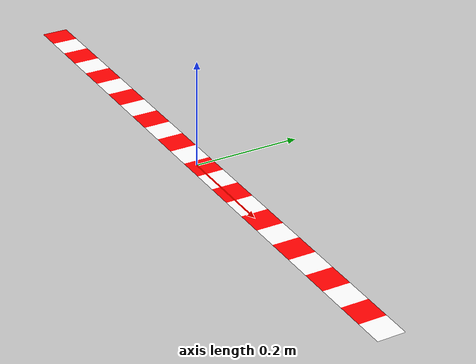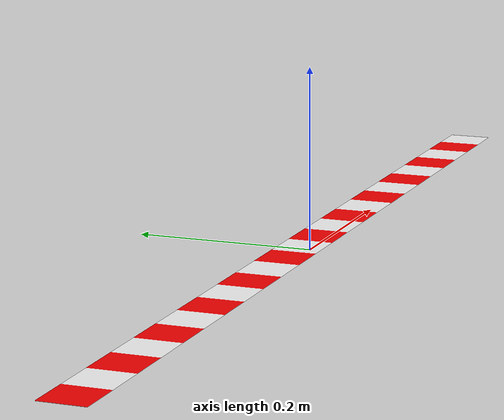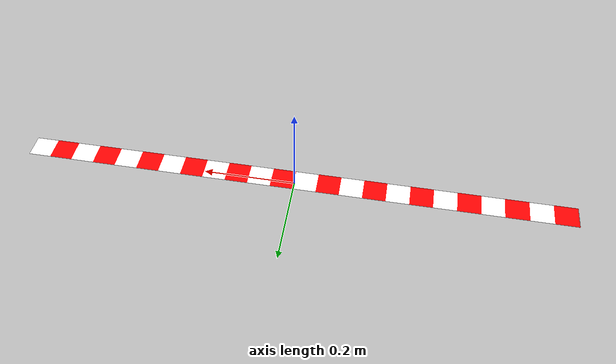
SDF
<?xml version="1.0" ?>
<sdf version='1.5'>
<model name='redline'>
<static>true</static>
<link name="redline">
   <pose frame=''>0 0 0.01 0 0 0</pose>
  <visual name='redlineV'>
    <cast_shadows>false</cast_shadows>
    <geometry>
      <mesh>
        <scale>1.0 1.0 1.0</scale>
        <uri>model://redline/redline.dae</uri>
      </mesh>
    </geometry>
    <material>
      <script>
        <name>start</name>
        <uri>model://redline/redline.dae</uri>
      </script>
    </material>
  </visual>
</link>
</model>
</sdf>
